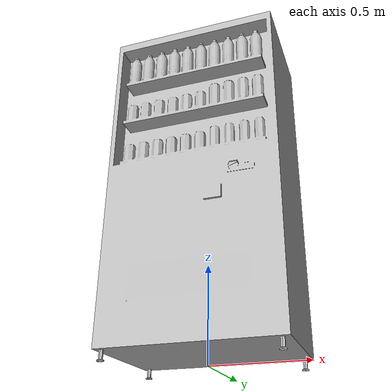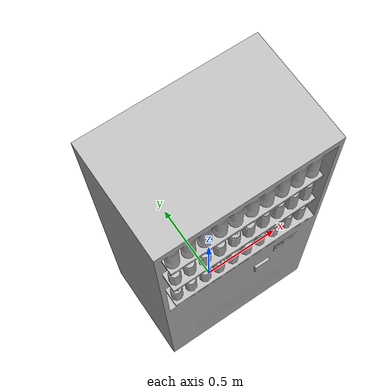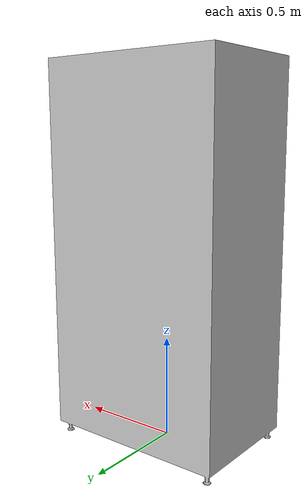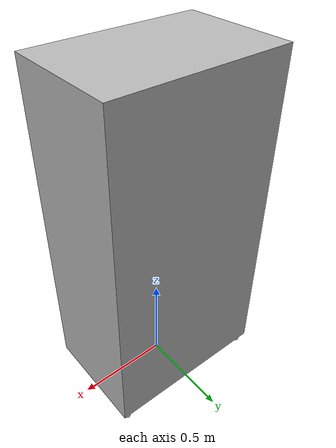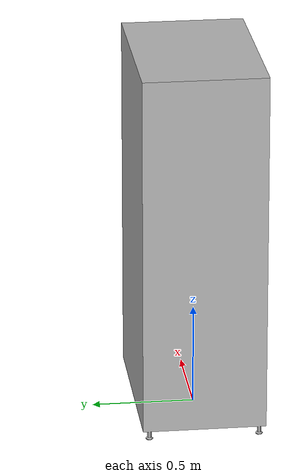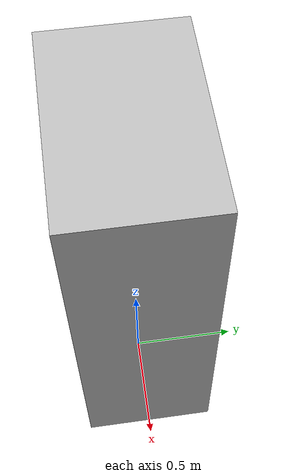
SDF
<sdf version="1.6">
  <model name="VendingMachine">
    <link name="body">
      <pose>0 0 0 0 0 0</pose>

      <visual name="visual">
        <geometry>
          <mesh>
            <uri>model://VendingMachine/meshes/vend.obj</uri>
          </mesh>
        </geometry>
      </visual>

      <collision name="collision">
        <geometry>
          <mesh>
            <uri>model://VendingMachine/meshes/vend.obj</uri>
          </mesh>
        </geometry>
      </collision>

    </link>
  </model>
</sdf>
